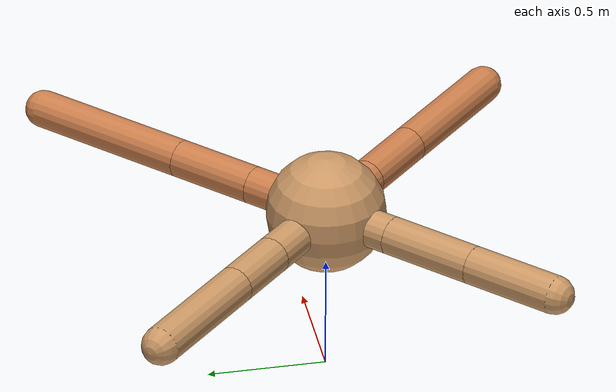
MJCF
<mujoco model="ant">
  <compiler angle="degree" coordinate="local" inertiafromgeom="true" />
  <option integrator="RK4" timestep="0.01" />
  <custom>
    <numeric data="0.0 0.0 0.55 1.0 0.0 0.0 0.0 0.0 1.0 0.0 -1.0 0.0 -1.0 0.0 1.0" name="init_qpos" />
  </custom>
  <default>
    <joint armature="1" damping="1" limited="true" />
    <geom conaffinity="0" condim="3" density="5.0" friction="1.5 0.1 0.1" margin="0.01" rgba="0.8 0.6 0.4 1" />
  </default>
  <worldbody>
    <body name="torso" pos="0 0 0.75">
      <geom name="torso_geom" pos="0 0 0" size="0.25" type="sphere" />

      <body name="front_left_leg" pos="0 0 0">
        <geom fromto="0.0 0.0 0.0 0.25450119615334943 0.25450119615334943 0.0" name="aux_1_geom" size="0.08" type="capsule" rgba=".8 .5 .3 1" />
        <body name="aux_1" pos="0.25450119615334943 0.25450119615334943 0.0">
          <joint axis="0 0 1" name="hip_1" pos="0.0 0.0 0.0" range="-40 40" type="hinge" />
          <geom fromto="0.0 0.0 0.0 0.26079632183280027 0.26079632183280027 0.0" name="left_leg_geom" size="0.08" type="capsule" rgba=".8 .5 .3 1" />
          <body pos="0.26079632183280027 0.26079632183280027 0.0" name="front_left_foot">
            <joint axis="-1 1 0" name="ankle_1" pos="0.0 0.0 0.0" range="30 100" type="hinge" />
            <geom fromto="0.0 0.0 0.0 0.5036548639900617 0.5036548639900617 0.0" name="left_ankle_geom" size="0.08" type="capsule" rgba=".8 .5 .3 1" />
          </body>
        </body>
      </body>
      <body name="front_right_leg" pos="0 0 0">
        <geom fromto="0.0 0.0 0.0 -0.2783860549936333 0.2783860549936333 0.0" name="aux_2_geom" size="0.08" type="capsule" />
        <body name="aux_2" pos="-0.2783860549936333 0.2783860549936333 0.0">
          <joint axis="0 0 1" name="hip_2" pos="0.0 0.0 0.0" range="-40 40" type="hinge" />
          <geom fromto="0.0 0.0 0.0 -0.18379846481013729 0.18379846481013729 0.0" name="right_leg_geom" size="0.08" type="capsule" />
          <body pos="-0.18379846481013729 0.18379846481013729 0.0" name="front_right_foot">
            <joint axis="1 1 0" name="ankle_2" pos="0.0 0.0 0.0" range="-100 -30" type="hinge" />
            <geom fromto="0.0 0.0 0.0 -0.36277508005625514 0.36277508005625514 0.0" name="right_ankle_geom" size="0.08" type="capsule" />
          </body>
        </body>
      </body>
      <body name="left_back_leg" pos="0 0 0">
        <geom fromto="0.0 0.0 0.0 -0.2262458976260387 -0.2262458976260387 0.0" name="aux_3_geom" size="0.08" type="capsule" />
        <body name="aux_3" pos="-0.2262458976260387 -0.2262458976260387 0.0">
          <joint axis="0 0 1" name="hip_3" pos="0.0 0.0 0.0" range="-40 40" type="hinge" />
          <geom fromto="0.0 0.0 0.0 -0.2758260165793102 -0.2758260165793102 0.0" name="back_leg_geom" size="0.08" type="capsule" />
          <body pos="-0.2758260165793102 -0.2758260165793102 0.0" name="left_back_foot">
            <joint axis="-1 1 0" name="ankle_3" pos="0.0 0.0 0.0" range="-100 -30" type="hinge" />
            <geom fromto="0.0 0.0 0.0 -0.2724139020077535 -0.2724139020077535 0.0" name="third_ankle_geom" size="0.08" type="capsule" />
          </body>
        </body>
      </body>
      <body name="right_back_leg" pos="0 0 0">
        <geom fromto="0.0 0.0 0.0 0.21935496171414182 -0.21935496171414182 0.0" name="aux_4_geom" size="0.08" type="capsule" rgba=".8 .5 .3 1" />
        <body name="aux_4" pos="0.21935496171414182 -0.21935496171414182 0.0">
          <joint axis="0 0 1" name="hip_4" pos="0.0 0.0 0.0" range="-40 40" type="hinge" />
          <geom fromto="0.0 0.0 0.0 0.22196673229122427 -0.22196673229122427 0.0" name="rightback_leg_geom" size="0.08" type="capsule" rgba=".8 .5 .3 1" />
          <body pos="0.22196673229122427 -0.22196673229122427 0.0" name="right_back_foot">
            <joint axis="1 1 0" name="ankle_4" pos="0.0 0.0 0.0" range="30 100" type="hinge" />
            <geom fromto="0.0 0.0 0.0 0.4144627694241314 -0.4144627694241314 0.0" name="fourth_ankle_geom" size="0.08" type="capsule" rgba=".8 .5 .3 1" />
          </body>
        </body>
      </body>
    </body>
  </worldbody>
  <actuator>
    <motor ctrllimited="true" ctrlrange="-1.0 1.0" joint="hip_4" gear="150" />
    <motor ctrllimited="true" ctrlrange="-1.0 1.0" joint="ankle_4" gear="150" />
    <motor ctrllimited="true" ctrlrange="-1.0 1.0" joint="hip_1" gear="150" />
    <motor ctrllimited="true" ctrlrange="-1.0 1.0" joint="ankle_1" gear="150" />
    <motor ctrllimited="true" ctrlrange="-1.0 1.0" joint="hip_2" gear="150" />
    <motor ctrllimited="true" ctrlrange="-1.0 1.0" joint="ankle_2" gear="150" />
    <motor ctrllimited="true" ctrlrange="-1.0 1.0" joint="hip_3" gear="150" />
    <motor ctrllimited="true" ctrlrange="-1.0 1.0" joint="ankle_3" gear="150" />
  </actuator>
</mujoco>
